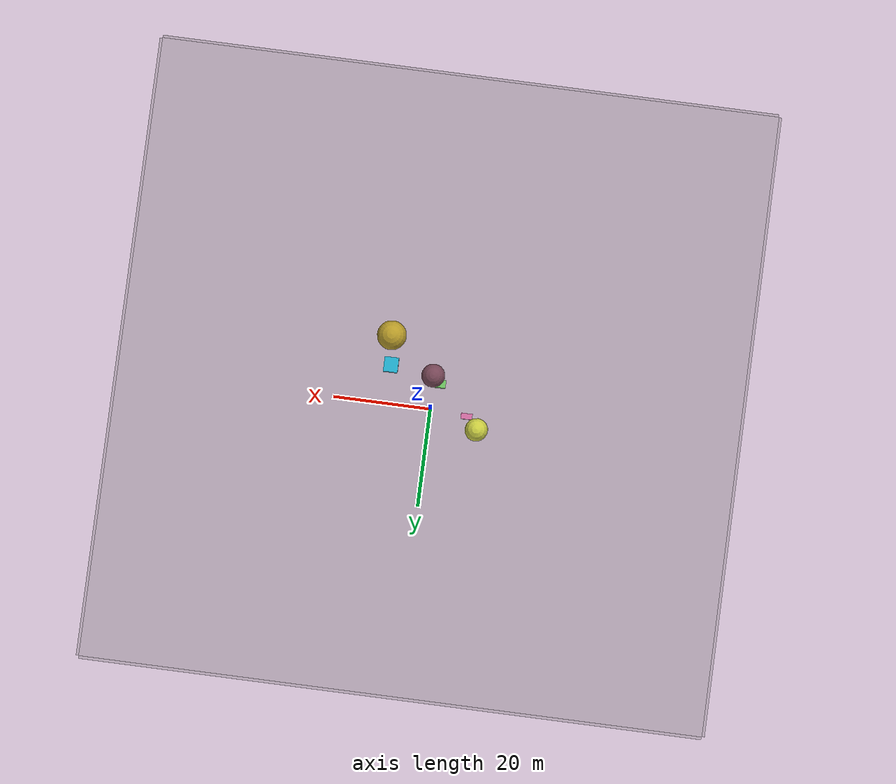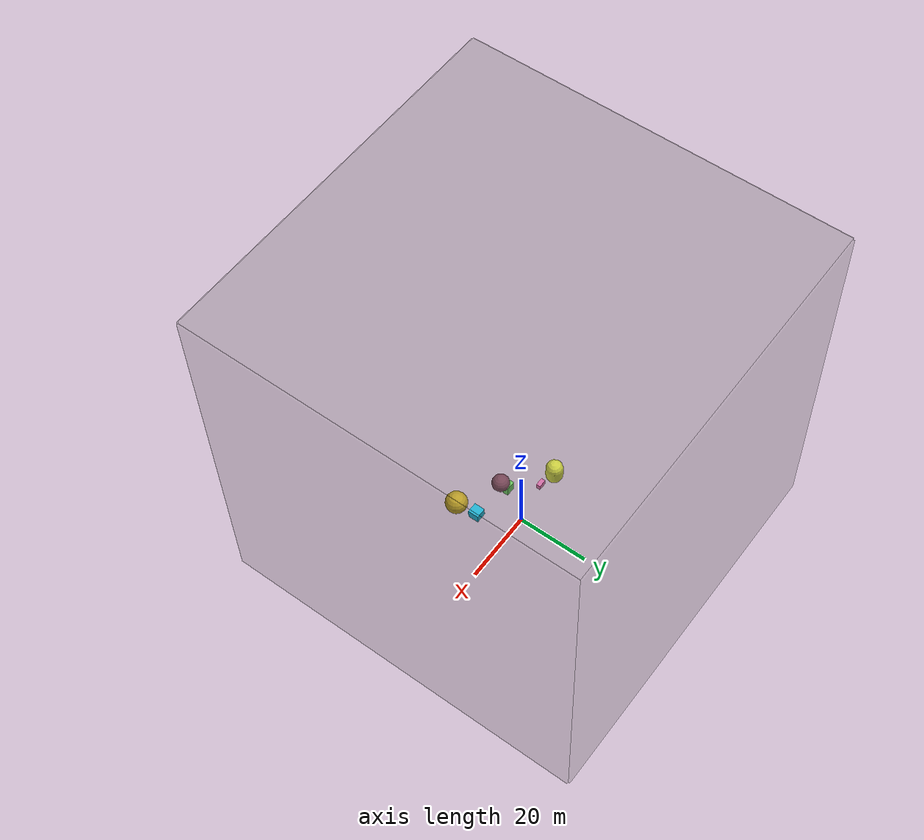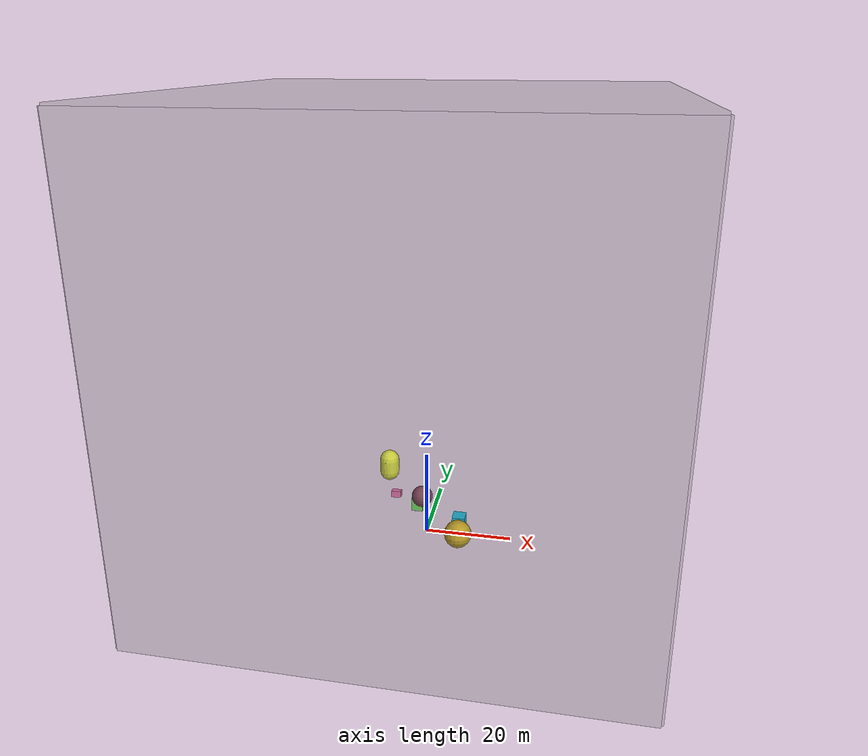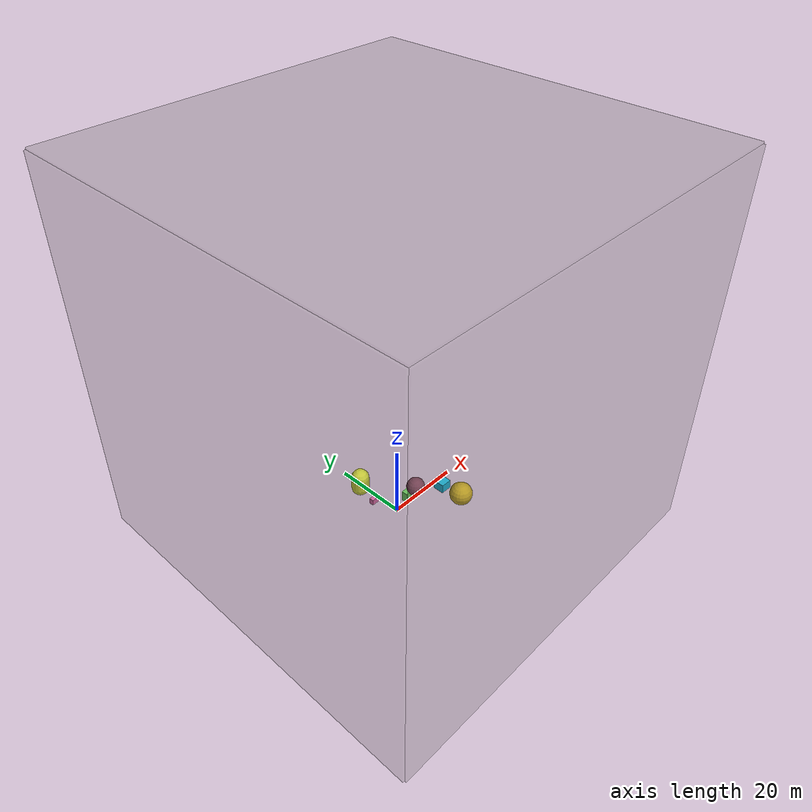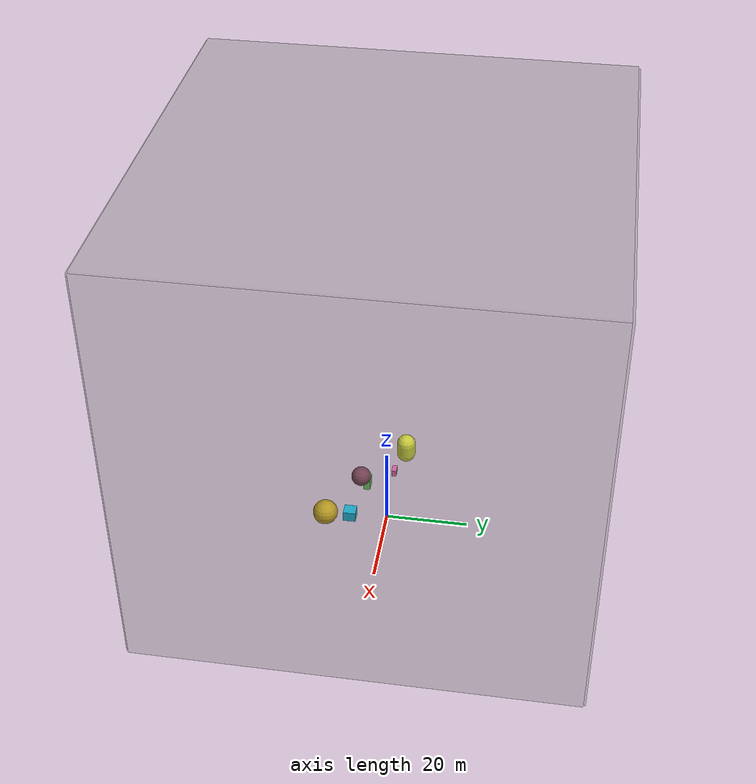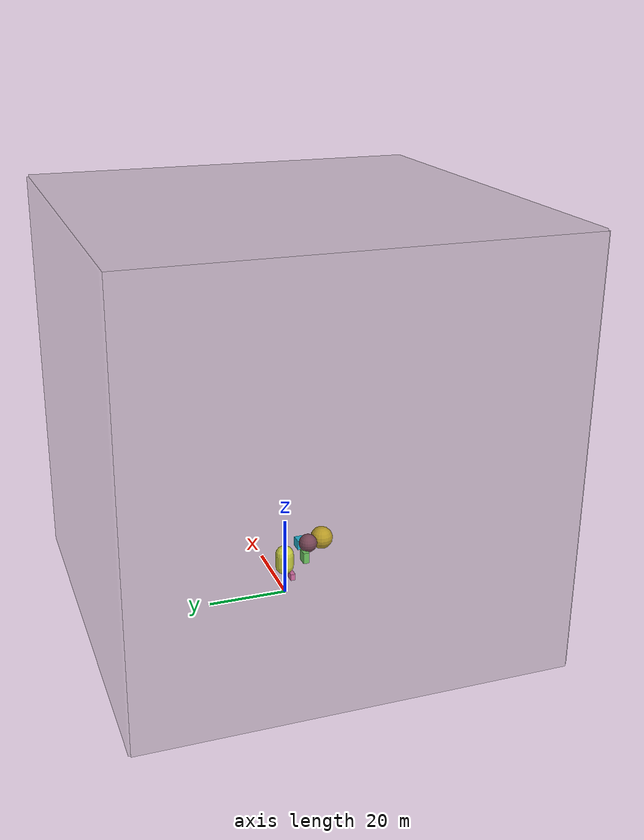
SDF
<!-- seed: 1725076610 -->
<sdf version='1.11'>
  <world name='world_0'>
    <gravity>0 0 -9.8066499999999994</gravity>
    <magnetic_field>5.5644999999999998e-06 2.2875799999999999e-05 -4.2388400000000002e-05</magnetic_field>
    <wind>
      <linear_velocity>0 2 7</linear_velocity>
    </wind>
    <physics default='false' type='ode'>
      <max_step_size>0.001</max_step_size>
      <real_time_factor>1</real_time_factor>
      <max_contacts>20</max_contacts>
    </physics>
    <model name='model_0'>
      <static>true</static>
      <self_collide>false</self_collide>
      <allow_auto_disable>true</allow_auto_disable>
      <enable_wind>true</enable_wind>
      <pose>-4.0407587932317295 -1.6347887551519573 7.0019645247196856 0 0 0</pose>
      <link name='link_690'>
        <pose>-3.3758726416641682 2.4916917285373223 1.8073107959913581 0 0 0</pose>
        <inertial>
          <pose>0 0 0 0 0 0</pose>
          <mass>1</mass>
          <inertia>
            <ixx>1</ixx>
            <ixy>0</ixy>
            <ixz>0</ixz>
            <iyy>1</iyy>
            <iyz>0</iyz>
            <izz>1</izz>
          </inertia>
        </inertial>
        <enable_wind>false</enable_wind>
        <collision name='collision_690'>
          <pose>0 0 0 0 0 0</pose>
          <geometry>
            <box>
              <size>2.262774735283958 1.1716251765080408 1.6066427820856541</size>
            </box>
          </geometry>
          <surface>
            <contact>
              <collide_bitmask>255</collide_bitmask>
            </contact>
            <friction>
              <ode>
                <mu>1</mu>
                <mu2>1</mu2>
                <slip1>0</slip1>
                <slip2>0</slip2>
                <fdir1>0 0 0</fdir1>
              </ode>
            </friction>
          </surface>
        </collision>
        <visual name='visual_690'>
          <pose>0 0 0 0 0 0</pose>
          <geometry>
            <box>
              <size>2.262774735283958 1.1716251765080408 1.6066427820856541</size>
            </box>
          </geometry>
          <cast_shadows>true</cast_shadows>
          <laser_retro>0</laser_retro>
          <transparency>0</transparency>
          <visibility_flags>4294967295</visibility_flags>
          <material>
            <ambient>0.979286551 0.478562832 0.745750487 1</ambient>
            <diffuse>0.979286551 0.478562832 0.745750487 1</diffuse>
            <specular>0 0 0 1</specular>
            <emissive>0 0 0 1</emissive>
            <render_order>0</render_order>
            <lighting>true</lighting>
            <double_sided>false</double_sided>
            <shader type='pixel'/>
          </material>
        </visual>
      </link>
      <link name='link_691'>
        <pose>4.2806291699283676 -4.5863862214592981 5.8477696317538292 0 0 0</pose>
        <inertial>
          <pose>0 0 0 0 0 0</pose>
          <mass>1</mass>
          <inertia>
            <ixx>1</ixx>
            <ixy>0</ixy>
            <ixz>0</ixz>
            <iyy>1</iyy>
            <iyz>0</iyz>
            <izz>1</izz>
          </inertia>
        </inertial>
        <enable_wind>false</enable_wind>
        <collision name='collision_691'>
          <pose>0 0 0 0 0 0</pose>
          <geometry>
            <sphere>
              <radius>2.3586762375629773</radius>
            </sphere>
          </geometry>
          <surface>
            <contact>
              <collide_bitmask>255</collide_bitmask>
            </contact>
            <friction>
              <ode>
                <mu>1</mu>
                <mu2>1</mu2>
                <slip1>0</slip1>
                <slip2>0</slip2>
                <fdir1>0 0 0</fdir1>
              </ode>
            </friction>
          </surface>
        </collision>
        <visual name='visual_691'>
          <pose>0 0 0 0 0 0</pose>
          <geometry>
            <sphere>
              <radius>2.3586762375629773</radius>
            </sphere>
          </geometry>
          <cast_shadows>true</cast_shadows>
          <laser_retro>0</laser_retro>
          <transparency>0</transparency>
          <visibility_flags>4294967295</visibility_flags>
          <material>
            <ambient>0.532500803 0.298043787 0.377105802 1</ambient>
            <diffuse>0.532500803 0.298043787 0.377105802 1</diffuse>
            <specular>0 0 0 1</specular>
            <emissive>0 0 0 1</emissive>
            <render_order>0</render_order>
            <lighting>true</lighting>
            <double_sided>false</double_sided>
            <shader type='pixel'/>
          </material>
        </visual>
      </link>
      <link name='link_692'>
        <pose>-5.591164404663842 5.1157973583211813 7.7790769774854631 0 0 0</pose>
        <inertial>
          <pose>0 0 0 0 0 0</pose>
          <mass>1</mass>
          <inertia>
            <ixx>1</ixx>
            <ixy>0</ixy>
            <ixz>0</ixz>
            <iyy>1</iyy>
            <iyz>0</iyz>
            <izz>1</izz>
          </inertia>
        </inertial>
        <enable_wind>false</enable_wind>
        <collision name='collision_692'>
          <pose>0 0 0 0 0 0</pose>
          <geometry>
            <capsule>
              <radius>2.2626793984514322</radius>
              <length>2.9106900601883083</length>
            </capsule>
          </geometry>
          <surface>
            <contact>
              <collide_bitmask>255</collide_bitmask>
            </contact>
            <friction>
              <ode>
                <mu>1</mu>
                <mu2>1</mu2>
                <slip1>0</slip1>
                <slip2>0</slip2>
                <fdir1>0 0 0</fdir1>
              </ode>
            </friction>
          </surface>
        </collision>
        <visual name='visual_692'>
          <pose>0 0 0 0 0 0</pose>
          <geometry>
            <capsule>
              <radius>2.2626793984514322</radius>
              <length>2.9106900601883083</length>
            </capsule>
          </geometry>
          <cast_shadows>true</cast_shadows>
          <laser_retro>0</laser_retro>
          <transparency>0</transparency>
          <visibility_flags>4294967295</visibility_flags>
          <material>
            <ambient>0.941207826 0.960963368 0.270401299 1</ambient>
            <diffuse>0.941207826 0.960963368 0.270401299 1</diffuse>
            <specular>0 0 0 1</specular>
            <emissive>0 0 0 1</emissive>
            <render_order>0</render_order>
            <lighting>true</lighting>
            <double_sided>false</double_sided>
            <shader type='pixel'/>
          </material>
        </visual>
      </link>
      <joint name='joint_460' type='gearbox'>
        <pose>0 0 0 0 0 0</pose>
        <parent>link_690</parent>
        <child>link_691</child>
        <axis>
          <xyz>0.65786918729380217 0.61005591030888162 0.44163324003814936</xyz>
          <limit>
            <lower>-inf</lower>
            <upper>inf</upper>
            <effort>inf</effort>
            <velocity>7.615923971377903</velocity>
            <stiffness>100000000</stiffness>
            <dissipation>1</dissipation>
          </limit>
          <dynamics>
            <spring_reference>0</spring_reference>
            <spring_stiffness>0</spring_stiffness>
            <damping>0</damping>
            <friction>0</friction>
          </dynamics>
        </axis>
        <axis2>
          <xyz>0.056372877245615877 0.31935005165245195 0.94595858430516222</xyz>
          <limit>
            <lower>-inf</lower>
            <upper>inf</upper>
            <effort>inf</effort>
            <velocity>3.5615240472891196</velocity>
            <stiffness>100000000</stiffness>
            <dissipation>1</dissipation>
          </limit>
          <dynamics>
            <spring_reference>0</spring_reference>
            <spring_stiffness>0</spring_stiffness>
            <damping>0</damping>
            <friction>0</friction>
          </dynamics>
        </axis2>
      </joint>
      <joint name='joint_461' type='ball'>
        <pose>0 0 0 0 0 0</pose>
        <parent>link_690</parent>
        <child>link_691</child>
        <axis>
          <xyz>0.8111578984339759 0.38742870775752686 0.43808887250592055</xyz>
          <limit>
            <lower>-inf</lower>
            <upper>inf</upper>
            <effort>inf</effort>
            <velocity>6.8882996722590875</velocity>
            <stiffness>100000000</stiffness>
            <dissipation>1</dissipation>
          </limit>
          <dynamics>
            <spring_reference>0</spring_reference>
            <spring_stiffness>0</spring_stiffness>
            <damping>0</damping>
            <friction>0</friction>
          </dynamics>
        </axis>
        <axis2>
          <xyz>0.09403169734700742 0.10815872168929518 0.98967657889665062</xyz>
          <limit>
            <lower>-inf</lower>
            <upper>inf</upper>
            <effort>inf</effort>
            <velocity>2.9855004975861963</velocity>
            <stiffness>100000000</stiffness>
            <dissipation>1</dissipation>
          </limit>
          <dynamics>
            <spring_reference>0</spring_reference>
            <spring_stiffness>0</spring_stiffness>
            <damping>0</damping>
            <friction>0</friction>
          </dynamics>
        </axis2>
      </joint>
    </model>
    <model name='model_1'>
      <static>true</static>
      <self_collide>false</self_collide>
      <allow_auto_disable>true</allow_auto_disable>
      <enable_wind>true</enable_wind>
      <pose>0.84107584958026038 -3.7809341071627278 7.280335502118616 0 0 0</pose>
      <link name='link_693'>
        <pose>8.1230232646237681 -3.7505541900197166 1.1465363900705638 0 0 0</pose>
        <inertial>
          <pose>0 0 0 0 0 0</pose>
          <mass>1</mass>
          <inertia>
            <ixx>1</ixx>
            <ixy>0</ixy>
            <ixz>0</ixz>
            <iyy>1</iyy>
            <iyz>0</iyz>
            <izz>1</izz>
          </inertia>
        </inertial>
        <enable_wind>false</enable_wind>
        <collision name='collision_693'>
          <pose>0 0 0 0 0 0</pose>
          <geometry>
            <box>
              <size>2.8673144347711945 2.9878457250694614 2.5346022874627776</size>
            </box>
          </geometry>
          <surface>
            <contact>
              <collide_bitmask>255</collide_bitmask>
            </contact>
            <friction>
              <ode>
                <mu>1</mu>
                <mu2>1</mu2>
                <slip1>0</slip1>
                <slip2>0</slip2>
                <fdir1>0 0 0</fdir1>
              </ode>
            </friction>
          </surface>
        </collision>
        <visual name='visual_693'>
          <pose>0 0 0 0 0 0</pose>
          <geometry>
            <box>
              <size>2.8673144347711945 2.9878457250694614 2.5346022874627776</size>
            </box>
          </geometry>
          <cast_shadows>true</cast_shadows>
          <laser_retro>0</laser_retro>
          <transparency>0</transparency>
          <visibility_flags>4294967295</visibility_flags>
          <material>
            <ambient>0.123863339 0.805083454 0.958712816 1</ambient>
            <diffuse>0.123863339 0.805083454 0.958712816 1</diffuse>
            <specular>0 0 0 1</specular>
            <emissive>0 0 0 1</emissive>
            <render_order>0</render_order>
            <lighting>true</lighting>
            <double_sided>false</double_sided>
            <shader type='pixel'/>
          </material>
        </visual>
      </link>
      <link name='link_694'>
        <pose>-1.9737197544775302 -1.0993940460906249 2.732182128453716 0 0 0</pose>
        <inertial>
          <pose>0 0 0 0 0 0</pose>
          <mass>1</mass>
          <inertia>
            <ixx>1</ixx>
            <ixy>0</ixy>
            <ixz>0</ixz>
            <iyy>1</iyy>
            <iyz>0</iyz>
            <izz>1</izz>
          </inertia>
        </inertial>
        <enable_wind>false</enable_wind>
        <collision name='collision_694'>
          <pose>0 0 0 0 0 0</pose>
          <geometry>
            <box>
              <size>2.6375133718683195 1.5761521130342173 2.9104389034950353</size>
            </box>
          </geometry>
          <surface>
            <contact>
              <collide_bitmask>255</collide_bitmask>
            </contact>
            <friction>
              <ode>
                <mu>1</mu>
                <mu2>1</mu2>
                <slip1>0</slip1>
                <slip2>0</slip2>
                <fdir1>0 0 0</fdir1>
              </ode>
            </friction>
          </surface>
        </collision>
        <visual name='visual_694'>
          <pose>0 0 0 0 0 0</pose>
          <geometry>
            <box>
              <size>2.6375133718683195 1.5761521130342173 2.9104389034950353</size>
            </box>
          </geometry>
          <cast_shadows>true</cast_shadows>
          <laser_retro>0</laser_retro>
          <transparency>0</transparency>
          <visibility_flags>4294967295</visibility_flags>
          <material>
            <ambient>0.484765917 0.903602242 0.421277612 1</ambient>
            <diffuse>0.484765917 0.903602242 0.421277612 1</diffuse>
            <specular>0 0 0 1</specular>
            <emissive>0 0 0 1</emissive>
            <render_order>0</render_order>
            <lighting>true</lighting>
            <double_sided>false</double_sided>
            <shader type='pixel'/>
          </material>
        </visual>
      </link>
      <link name='link_695'>
        <pose>8.748919970462584 -9.6737977436053093 1.3508393627807302 0 0 0</pose>
        <inertial>
          <pose>0 0 0 0 0 0</pose>
          <mass>1</mass>
          <inertia>
            <ixx>1</ixx>
            <ixy>0</ixy>
            <ixz>0</ixz>
            <iyy>1</iyy>
            <iyz>0</iyz>
            <izz>1</izz>
          </inertia>
        </inertial>
        <enable_wind>false</enable_wind>
        <collision name='collision_695'>
          <pose>0 0 0 0 0 0</pose>
          <geometry>
            <sphere>
              <radius>2.9847520389906563</radius>
            </sphere>
          </geometry>
          <surface>
            <contact>
              <collide_bitmask>255</collide_bitmask>
            </contact>
            <friction>
              <ode>
                <mu>1</mu>
                <mu2>1</mu2>
                <slip1>0</slip1>
                <slip2>0</slip2>
                <fdir1>0 0 0</fdir1>
              </ode>
            </friction>
          </surface>
        </collision>
        <visual name='visual_695'>
          <pose>0 0 0 0 0 0</pose>
          <geometry>
            <sphere>
              <radius>2.9847520389906563</radius>
            </sphere>
          </geometry>
          <cast_shadows>true</cast_shadows>
          <laser_retro>0</laser_retro>
          <transparency>0</transparency>
          <visibility_flags>4294967295</visibility_flags>
          <material>
            <ambient>0.852603912 0.712208629 0.150613531 1</ambient>
            <diffuse>0.852603912 0.712208629 0.150613531 1</diffuse>
            <specular>0 0 0 1</specular>
            <emissive>0 0 0 1</emissive>
            <render_order>0</render_order>
            <lighting>true</lighting>
            <double_sided>false</double_sided>
            <shader type='pixel'/>
          </material>
        </visual>
      </link>
      <joint name='joint_462' type='universal'>
        <pose>0 0 0 0 0 0</pose>
        <parent>link_694</parent>
        <child>link_693</child>
        <axis>
          <xyz>0.15002739023286446 0.33052753621031677 0.93179575551010829</xyz>
          <limit>
            <lower>-inf</lower>
            <upper>inf</upper>
            <effort>inf</effort>
            <velocity>0.31937128597545272</velocity>
            <stiffness>100000000</stiffness>
            <dissipation>1</dissipation>
          </limit>
          <dynamics>
            <spring_reference>0</spring_reference>
            <spring_stiffness>0</spring_stiffness>
            <damping>0</damping>
            <friction>0</friction>
          </dynamics>
        </axis>
        <axis2>
          <xyz>0.28336009616499613 0.3894333588914658 0.8763838855683479</xyz>
          <limit>
            <lower>-inf</lower>
            <upper>inf</upper>
            <effort>inf</effort>
            <velocity>0.61272169902911067</velocity>
            <stiffness>100000000</stiffness>
            <dissipation>1</dissipation>
          </limit>
          <dynamics>
            <spring_reference>0</spring_reference>
            <spring_stiffness>0</spring_stiffness>
            <damping>0</damping>
            <friction>0</friction>
          </dynamics>
        </axis2>
      </joint>
      <joint name='joint_463' type='ball'>
        <pose>0 0 0 0 0 0</pose>
        <parent>link_694</parent>
        <child>link_693</child>
        <axis>
          <xyz>0.31825164574377535 0.69348149925124591 0.64637396310311157</xyz>
          <limit>
            <lower>-inf</lower>
            <upper>inf</upper>
            <effort>inf</effort>
            <velocity>5.9633415560361422</velocity>
            <stiffness>100000000</stiffness>
            <dissipation>1</dissipation>
          </limit>
          <dynamics>
            <spring_reference>0</spring_reference>
            <spring_stiffness>0</spring_stiffness>
            <damping>0</damping>
            <friction>0</friction>
          </dynamics>
        </axis>
        <axis2>
          <xyz>0.21272744346861894 0.67705940842836743 0.70451230809258025</xyz>
          <limit>
            <lower>-inf</lower>
            <upper>inf</upper>
            <effort>inf</effort>
            <velocity>0.89984595281601409</velocity>
            <stiffness>100000000</stiffness>
            <dissipation>1</dissipation>
          </limit>
          <dynamics>
            <spring_reference>0</spring_reference>
            <spring_stiffness>0</spring_stiffness>
            <damping>0</damping>
            <friction>0</friction>
          </dynamics>
        </axis2>
      </joint>
    </model>
    <model name='ground_model'>
      <static>true</static>
      <self_collide>false</self_collide>
      <allow_auto_disable>true</allow_auto_disable>
      <enable_wind>false</enable_wind>
      <pose>0 0 0 0 0 0</pose>
      <link name='ground_link'>
        <pose>0 0 0 0 0 0</pose>
        <inertial>
          <pose>0 0 0 0 0 0</pose>
          <mass>1</mass>
          <inertia>
            <ixx>1</ixx>
            <ixy>0</ixy>
            <ixz>0</ixz>
            <iyy>1</iyy>
            <iyz>0</iyz>
            <izz>1</izz>
          </inertia>
        </inertial>
        <enable_wind>false</enable_wind>
        <collision name='ground_collision'>
          <pose>0 0 0 0 0 0</pose>
          <geometry>
            <plane>
              <normal>0 0 1</normal>
              <size>100 100</size>
            </plane>
          </geometry>
          <surface>
            <contact>
              <collide_bitmask>255</collide_bitmask>
            </contact>
            <friction>
              <ode>
                <mu>1</mu>
                <mu2>1</mu2>
                <slip1>0</slip1>
                <slip2>0</slip2>
                <fdir1>0 0 0</fdir1>
              </ode>
            </friction>
          </surface>
        </collision>
      </link>
    </model>
    <model name='ceiling_model'>
      <static>true</static>
      <self_collide>false</self_collide>
      <allow_auto_disable>true</allow_auto_disable>
      <enable_wind>false</enable_wind>
      <pose>0 0 100 0 0 0</pose>
      <link name='ceiling_link'>
        <pose>0 0 0 0 0 0</pose>
        <inertial>
          <pose>0 0 0 0 0 0</pose>
          <mass>1</mass>
          <inertia>
            <ixx>1</ixx>
            <ixy>0</ixy>
            <ixz>0</ixz>
            <iyy>1</iyy>
            <iyz>0</iyz>
            <izz>1</izz>
          </inertia>
        </inertial>
        <enable_wind>false</enable_wind>
        <collision name='ceiling_collision'>
          <pose>0 0 0 0 0 0</pose>
          <geometry>
            <box>
              <size>102 102 3</size>
            </box>
          </geometry>
          <surface>
            <contact>
              <collide_bitmask>255</collide_bitmask>
            </contact>
            <friction>
              <ode>
                <mu>1</mu>
                <mu2>1</mu2>
                <slip1>0</slip1>
                <slip2>0</slip2>
                <fdir1>0 0 0</fdir1>
              </ode>
            </friction>
          </surface>
        </collision>
        <visual name='ceiling_visual'>
          <pose>0 0 0 0 0 0</pose>
          <geometry>
            <box>
              <size>102 102 3</size>
            </box>
          </geometry>
          <cast_shadows>true</cast_shadows>
          <laser_retro>0</laser_retro>
          <transparency>0</transparency>
          <visibility_flags>4294967295</visibility_flags>
          <material>
            <ambient>0.200000003 0.200000003 0.200000003 0.200000003</ambient>
            <diffuse>0.200000003 0.200000003 0.200000003 0.200000003</diffuse>
            <specular>0 0 0 1</specular>
            <emissive>0 0 0 1</emissive>
            <render_order>0</render_order>
            <lighting>true</lighting>
            <double_sided>false</double_sided>
            <shader type='pixel'/>
          </material>
        </visual>
      </link>
    </model>
    <model name='west_model'>
      <static>true</static>
      <self_collide>false</self_collide>
      <allow_auto_disable>true</allow_auto_disable>
      <enable_wind>false</enable_wind>
      <pose>0 50 50 0 0 0</pose>
      <link name='west_link'>
        <pose>0 0 0 0 0 0</pose>
        <inertial>
          <pose>0 0 0 0 0 0</pose>
          <mass>1</mass>
          <inertia>
            <ixx>1</ixx>
            <ixy>0</ixy>
            <ixz>0</ixz>
            <iyy>1</iyy>
            <iyz>0</iyz>
            <izz>1</izz>
          </inertia>
        </inertial>
        <enable_wind>false</enable_wind>
        <collision name='west_collision'>
          <pose>0 0 0 0 0 0</pose>
          <geometry>
            <box>
              <size>102 3 102</size>
            </box>
          </geometry>
          <surface>
            <contact>
              <collide_bitmask>255</collide_bitmask>
            </contact>
            <friction>
              <ode>
                <mu>1</mu>
                <mu2>1</mu2>
                <slip1>0</slip1>
                <slip2>0</slip2>
                <fdir1>0 0 0</fdir1>
              </ode>
            </friction>
          </surface>
        </collision>
        <visual name='west_visual'>
          <pose>0 0 0 0 0 0</pose>
          <geometry>
            <box>
              <size>102 3 102</size>
            </box>
          </geometry>
          <cast_shadows>true</cast_shadows>
          <laser_retro>0</laser_retro>
          <transparency>0</transparency>
          <visibility_flags>4294967295</visibility_flags>
          <material>
            <ambient>0.200000003 0.200000003 0.200000003 0.200000003</ambient>
            <diffuse>0.200000003 0.200000003 0.200000003 0.200000003</diffuse>
            <specular>0 0 0 1</specular>
            <emissive>0 0 0 1</emissive>
            <render_order>0</render_order>
            <lighting>true</lighting>
            <double_sided>false</double_sided>
            <shader type='pixel'/>
          </material>
        </visual>
      </link>
    </model>
    <model name='east_model'>
      <static>true</static>
      <self_collide>false</self_collide>
      <allow_auto_disable>true</allow_auto_disable>
      <enable_wind>false</enable_wind>
      <pose>0 -50 50 0 0 0</pose>
      <link name='east_link'>
        <pose>0 0 0 0 0 0</pose>
        <inertial>
          <pose>0 0 0 0 0 0</pose>
          <mass>1</mass>
          <inertia>
            <ixx>1</ixx>
            <ixy>0</ixy>
            <ixz>0</ixz>
            <iyy>1</iyy>
            <iyz>0</iyz>
            <izz>1</izz>
          </inertia>
        </inertial>
        <enable_wind>false</enable_wind>
        <collision name='east_collision'>
          <pose>0 0 0 0 0 0</pose>
          <geometry>
            <box>
              <size>102 3 102</size>
            </box>
          </geometry>
          <surface>
            <contact>
              <collide_bitmask>255</collide_bitmask>
            </contact>
            <friction>
              <ode>
                <mu>1</mu>
                <mu2>1</mu2>
                <slip1>0</slip1>
                <slip2>0</slip2>
                <fdir1>0 0 0</fdir1>
              </ode>
            </friction>
          </surface>
        </collision>
        <visual name='east_visual'>
          <pose>0 0 0 0 0 0</pose>
          <geometry>
            <box>
              <size>102 3 102</size>
            </box>
          </geometry>
          <cast_shadows>true</cast_shadows>
          <laser_retro>0</laser_retro>
          <transparency>0</transparency>
          <visibility_flags>4294967295</visibility_flags>
          <material>
            <ambient>0.200000003 0.200000003 0.200000003 0.200000003</ambient>
            <diffuse>0.200000003 0.200000003 0.200000003 0.200000003</diffuse>
            <specular>0 0 0 1</specular>
            <emissive>0 0 0 1</emissive>
            <render_order>0</render_order>
            <lighting>true</lighting>
            <double_sided>false</double_sided>
            <shader type='pixel'/>
          </material>
        </visual>
      </link>
    </model>
    <model name='north_model'>
      <static>true</static>
      <self_collide>false</self_collide>
      <allow_auto_disable>true</allow_auto_disable>
      <enable_wind>false</enable_wind>
      <pose>50 0 50 0 0 0</pose>
      <link name='north_link'>
        <pose>0 0 0 0 0 0</pose>
        <inertial>
          <pose>0 0 0 0 0 0</pose>
          <mass>1</mass>
          <inertia>
            <ixx>1</ixx>
            <ixy>0</ixy>
            <ixz>0</ixz>
            <iyy>1</iyy>
            <iyz>0</iyz>
            <izz>1</izz>
          </inertia>
        </inertial>
        <enable_wind>false</enable_wind>
        <collision name='north_collision'>
          <pose>0 0 0 0 0 0</pose>
          <geometry>
            <box>
              <size>3 102 102</size>
            </box>
          </geometry>
          <surface>
            <contact>
              <collide_bitmask>255</collide_bitmask>
            </contact>
            <friction>
              <ode>
                <mu>1</mu>
                <mu2>1</mu2>
                <slip1>0</slip1>
                <slip2>0</slip2>
                <fdir1>0 0 0</fdir1>
              </ode>
            </friction>
          </surface>
        </collision>
        <visual name='north_visual'>
          <pose>0 0 0 0 0 0</pose>
          <geometry>
            <box>
              <size>3 102 102</size>
            </box>
          </geometry>
          <cast_shadows>true</cast_shadows>
          <laser_retro>0</laser_retro>
          <transparency>0</transparency>
          <visibility_flags>4294967295</visibility_flags>
          <material>
            <ambient>0.200000003 0.200000003 0.200000003 0.200000003</ambient>
            <diffuse>0.200000003 0.200000003 0.200000003 0.200000003</diffuse>
            <specular>0 0 0 1</specular>
            <emissive>0 0 0 1</emissive>
            <render_order>0</render_order>
            <lighting>true</lighting>
            <double_sided>false</double_sided>
            <shader type='pixel'/>
          </material>
        </visual>
      </link>
    </model>
    <model name='south_model'>
      <static>true</static>
      <self_collide>false</self_collide>
      <allow_auto_disable>true</allow_auto_disable>
      <enable_wind>false</enable_wind>
      <pose>-50 0 50 0 0 0</pose>
      <link name='south_link'>
        <pose>0 0 0 0 0 0</pose>
        <inertial>
          <pose>0 0 0 0 0 0</pose>
          <mass>1</mass>
          <inertia>
            <ixx>1</ixx>
            <ixy>0</ixy>
            <ixz>0</ixz>
            <iyy>1</iyy>
            <iyz>0</iyz>
            <izz>1</izz>
          </inertia>
        </inertial>
        <enable_wind>false</enable_wind>
        <collision name='south_collision'>
          <pose>0 0 0 0 0 0</pose>
          <geometry>
            <box>
              <size>3 102 102</size>
            </box>
          </geometry>
          <surface>
            <contact>
              <collide_bitmask>255</collide_bitmask>
            </contact>
            <friction>
              <ode>
                <mu>1</mu>
                <mu2>1</mu2>
                <slip1>0</slip1>
                <slip2>0</slip2>
                <fdir1>0 0 0</fdir1>
              </ode>
            </friction>
          </surface>
        </collision>
        <visual name='south_visual'>
          <pose>0 0 0 0 0 0</pose>
          <geometry>
            <box>
              <size>3 102 102</size>
            </box>
          </geometry>
          <cast_shadows>true</cast_shadows>
          <laser_retro>0</laser_retro>
          <transparency>0</transparency>
          <visibility_flags>4294967295</visibility_flags>
          <material>
            <ambient>0.200000003 0.200000003 0.200000003 0.200000003</ambient>
            <diffuse>0.200000003 0.200000003 0.200000003 0.200000003</diffuse>
            <specular>0 0 0 1</specular>
            <emissive>0 0 0 1</emissive>
            <render_order>0</render_order>
            <lighting>true</lighting>
            <double_sided>false</double_sided>
            <shader type='pixel'/>
          </material>
        </visual>
      </link>
    </model>
    <atmosphere type='adiabatic'>
      <temperature>288.14999999999998</temperature>
      <pressure>101325</pressure>
      <temperature_gradient>-0.0064999999999999997</temperature_gradient>
    </atmosphere>
    <scene>
      <ambient>0.400000006 0.400000006 0.400000006 1</ambient>
      <background>0.699999988 0.699999988 0.699999988 1</background>
      <grid>true</grid>
      <origin_visual>true</origin_visual>
      <shadows>true</shadows>
    </scene>
  </world>
</sdf>
